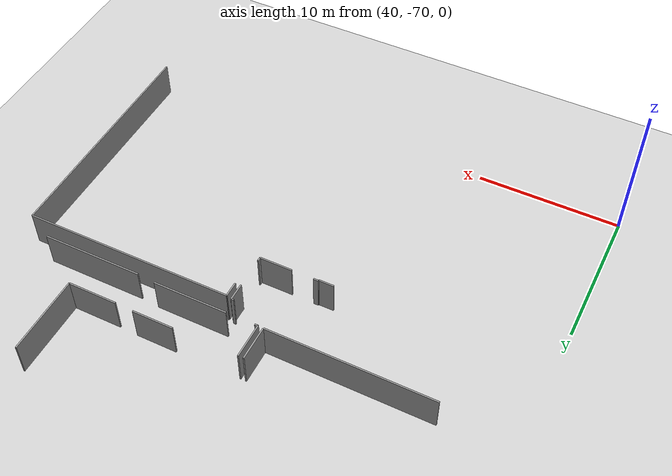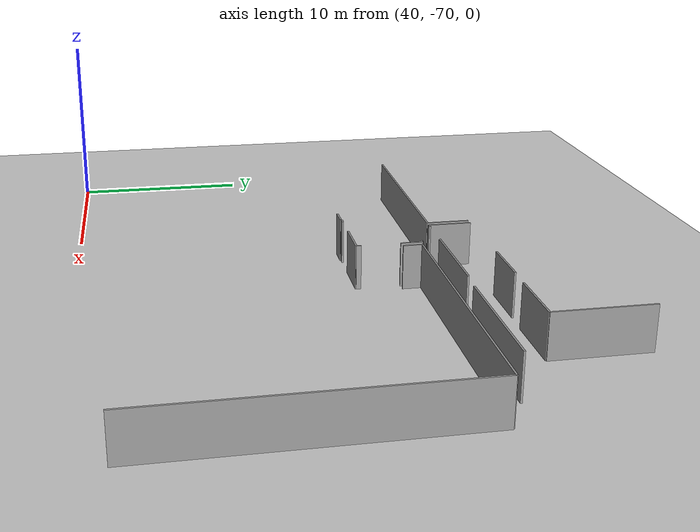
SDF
<sdf version="1.6">
 <world name="default">
  <model name="ground_plane">
   <static>1</static>
   <link name="link">
    <collision name="collision">
     <geometry><plane><normal>0 0 1</normal><size>100 100</size></plane></geometry>
     <surface><friction><ode><mu>100</mu><mu2>50</mu2></ode></friction></surface>
    </collision>
    <visual name="visual">
     <cast_shadows>0</cast_shadows>
     <geometry><plane><normal>0 0 1</normal><size>100 100</size></plane></geometry>
     <material>
      <script><uri>file://media/materials/scripts/gazebo.material</uri><name>Gazebo/Grey</name></script>
     </material>
    </visual>
   </link>
  </model>
  <model name="50036893">
   <static>1</static>
   <link name="Wall_196">
    <collision name="Wall_196_Collision">
     <geometry><box><size>0.18514174122 0.1 2.5</size></box></geometry>
     <pose>0.09257087061 0 1.25 0 0 0</pose>
    </collision>
    <visual name="Wall_196_Visual">
     <pose>0.09257087061 0 1.25 0 0 0</pose>
     <geometry><box><size>0.18514174122 0.1 2.5</size></box></geometry>
     <material>
      <script><uri>file://media/materials/scripts/gazebo.material</uri><name>Gazebo/Grey</name></script>
      <ambient>1 1 1 1</ambient>
     </material>
    </visual>
    <pose>133.325640229 -119.268563313 0 0 0 0.0</pose>
   </link>
   <link name="Wall_197">
    <collision name="Wall_197_Collision">
     <geometry><box><size>1.21407330852 0.1 2.5</size></box></geometry>
     <pose>0.60703665426 0 1.25 0 0 0</pose>
    </collision>
    <visual name="Wall_197_Visual">
     <pose>0.60703665426 0 1.25 0 0 0</pose>
     <geometry><box><size>1.21407330852 0.1 2.5</size></box></geometry>
     <material>
      <script><uri>file://media/materials/scripts/gazebo.material</uri><name>Gazebo/Grey</name></script>
      <ambient>1 1 1 1</ambient>
     </material>
    </visual>
    <pose>133.51078197 -119.268563313 0 0 0 -1.57079632679</pose>
   </link>
   <link name="Wall_198">
    <collision name="Wall_198_Collision">
     <geometry><box><size>0.273908329476 0.1 2.5</size></box></geometry>
     <pose>0.136954164738 0 1.25 0 0 0</pose>
    </collision>
    <visual name="Wall_198_Visual">
     <pose>0.136954164738 0 1.25 0 0 0</pose>
     <geometry><box><size>0.273908329476 0.1 2.5</size></box></geometry>
     <material>
      <script><uri>file://media/materials/scripts/gazebo.material</uri><name>Gazebo/Grey</name></script>
      <ambient>1 1 1 1</ambient>
     </material>
    </visual>
    <pose>133.51078197 -122.641693667 0 0 0 -1.57079632679</pose>
   </link>
   <link name="Wall_199">
    <collision name="Wall_199_Collision">
     <geometry><box><size>2.26735228289 0.1 2.5</size></box></geometry>
     <pose>1.13367614144 0 1.25 0 0 0</pose>
    </collision>
    <visual name="Wall_199_Visual">
     <pose>1.13367614144 0 1.25 0 0 0</pose>
     <geometry><box><size>2.26735228289 0.1 2.5</size></box></geometry>
     <material>
      <script><uri>file://media/materials/scripts/gazebo.material</uri><name>Gazebo/Grey</name></script>
      <ambient>1 1 1 1</ambient>
     </material>
    </visual>
    <pose>133.51078197 -122.915601996 0 0 0 3.14159265359</pose>
   </link>
   <link name="Wall_200">
    <collision name="Wall_200_Collision">
     <geometry><box><size>0.339849223609 0.1 2.5</size></box></geometry>
     <pose>0.169924611805 0 1.25 0 0 0</pose>
    </collision>
    <visual name="Wall_200_Visual">
     <pose>0.169924611805 0 1.25 0 0 0</pose>
     <geometry><box><size>0.339849223609 0.1 2.5</size></box></geometry>
     <material>
      <script><uri>file://media/materials/scripts/gazebo.material</uri><name>Gazebo/Grey</name></script>
      <ambient>1 1 1 1</ambient>
     </material>
    </visual>
    <pose>129.726789122 -122.915601996 0 0 0 3.14159265359</pose>
   </link>
   <link name="Wall_201">
    <collision name="Wall_201_Collision">
     <geometry><box><size>0.054274428248 0.1 2.5</size></box></geometry>
     <pose>0.027137214124 0 1.25 0 0 0</pose>
    </collision>
    <visual name="Wall_201_Visual">
     <pose>0.027137214124 0 1.25 0 0 0</pose>
     <geometry><box><size>0.054274428248 0.1 2.5</size></box></geometry>
     <material>
      <script><uri>file://media/materials/scripts/gazebo.material</uri><name>Gazebo/Grey</name></script>
      <ambient>1 1 1 1</ambient>
     </material>
    </visual>
    <pose>129.386939899 -122.915601996 0 0 0 -1.57079632679</pose>
   </link>
   <link name="Wall_202">
    <collision name="Wall_202_Collision">
     <geometry><box><size>1.05251811789 0.1 2.5</size></box></geometry>
     <pose>0.526259058947 0 1.25 0 0 0</pose>
    </collision>
    <visual name="Wall_202_Visual">
     <pose>0.526259058947 0 1.25 0 0 0</pose>
     <geometry><box><size>1.05251811789 0.1 2.5</size></box></geometry>
     <material>
      <script><uri>file://media/materials/scripts/gazebo.material</uri><name>Gazebo/Grey</name></script>
      <ambient>1 1 1 1</ambient>
     </material>
    </visual>
    <pose>129.386939899 -122.969876424 0 0 0 3.14159265359</pose>
   </link>
   <link name="Wall_261">
    <collision name="Wall_261_Collision">
     <geometry><box><size>1.05860496966 0.1 2.5</size></box></geometry>
     <pose>0.52930248483 0 1.25 0 0 0</pose>
    </collision>
    <visual name="Wall_261_Visual">
     <pose>0.52930248483 0 1.25 0 0 0</pose>
     <geometry><box><size>1.05860496966 0.1 2.5</size></box></geometry>
     <material>
      <script><uri>file://media/materials/scripts/gazebo.material</uri><name>Gazebo/Grey</name></script>
      <ambient>1 1 1 1</ambient>
     </material>
    </visual>
    <pose>133.896282582 -120.433180951 0 0 0 1.57079632679</pose>
   </link>
   <link name="Wall_262">
    <collision name="Wall_262_Collision">
     <geometry><box><size>14.6236613681 0.1 2.5</size></box></geometry>
     <pose>7.31183068407 0 1.25 0 0 0</pose>
    </collision>
    <visual name="Wall_262_Visual">
     <pose>7.31183068407 0 1.25 0 0 0</pose>
     <geometry><box><size>14.6236613681 0.1 2.5</size></box></geometry>
     <material>
      <script><uri>file://media/materials/scripts/gazebo.material</uri><name>Gazebo/Grey</name></script>
      <ambient>1 1 1 1</ambient>
     </material>
    </visual>
    <pose>133.896282582 -119.374575981 0 0 0 0.0</pose>
   </link>
   <link name="Wall_263">
    <collision name="Wall_263_Collision">
     <geometry><box><size>16.3802253403 0.1 2.5</size></box></geometry>
     <pose>8.19011267016 0 1.25 0 0 0</pose>
    </collision>
    <visual name="Wall_263_Visual">
     <pose>8.19011267016 0 1.25 0 0 0</pose>
     <geometry><box><size>16.3802253403 0.1 2.5</size></box></geometry>
     <material>
      <script><uri>file://media/materials/scripts/gazebo.material</uri><name>Gazebo/Grey</name></script>
      <ambient>1 1 1 1</ambient>
     </material>
    </visual>
    <pose>148.51994395 -119.374575981 0 0 0 -1.57079632679</pose>
   </link>
   <link name="Wall_265">
    <collision name="Wall_265_Collision">
     <geometry><box><size>2.43550156293 0.1 2.5</size></box></geometry>
     <pose>1.21775078146 0 1.25 0 0 0</pose>
    </collision>
    <visual name="Wall_265_Visual">
     <pose>1.21775078146 0 1.25 0 0 0</pose>
     <geometry><box><size>2.43550156293 0.1 2.5</size></box></geometry>
     <material>
      <script><uri>file://media/materials/scripts/gazebo.material</uri><name>Gazebo/Grey</name></script>
      <ambient>1 1 1 1</ambient>
     </material>
    </visual>
    <pose>131.065896511 -118.252312687 0 0 0 1.57079632679</pose>
   </link>
   <link name="Wall_275">
    <collision name="Wall_275_Collision">
     <geometry><box><size>2.85574795361 0.1 2.5</size></box></geometry>
     <pose>1.42787397681 0 1.25 0 0 0</pose>
    </collision>
    <visual name="Wall_275_Visual">
     <pose>1.42787397681 0 1.25 0 0 0</pose>
     <geometry><box><size>2.85574795361 0.1 2.5</size></box></geometry>
     <material>
      <script><uri>file://media/materials/scripts/gazebo.material</uri><name>Gazebo/Grey</name></script>
      <ambient>1 1 1 1</ambient>
     </material>
    </visual>
    <pose>135.5524135 -115.794999905 0 0 0 0.0</pose>
   </link>
   <link name="Wall_276">
    <collision name="Wall_276_Collision">
     <geometry><box><size>5.13324498944 0.1 2.5</size></box></geometry>
     <pose>2.56662249472 0 1.25 0 0 0</pose>
    </collision>
    <visual name="Wall_276_Visual">
     <pose>2.56662249472 0 1.25 0 0 0</pose>
     <geometry><box><size>5.13324498944 0.1 2.5</size></box></geometry>
     <material>
      <script><uri>file://media/materials/scripts/gazebo.material</uri><name>Gazebo/Grey</name></script>
      <ambient>1 1 1 1</ambient>
     </material>
    </visual>
    <pose>138.408161454 -118.235320225 0 0 0 3.14159265359</pose>
   </link>
   <link name="Wall_277">
    <collision name="Wall_277_Collision">
     <geometry><box><size>0.223830502129 0.1 2.5</size></box></geometry>
     <pose>0.111915251065 0 1.25 0 0 0</pose>
    </collision>
    <visual name="Wall_277_Visual">
     <pose>0.111915251065 0 1.25 0 0 0</pose>
     <geometry><box><size>0.223830502129 0.1 2.5</size></box></geometry>
     <material>
      <script><uri>file://media/materials/scripts/gazebo.material</uri><name>Gazebo/Grey</name></script>
      <ambient>1 1 1 1</ambient>
     </material>
    </visual>
    <pose>131.289081076 -118.235320225 0 0 0 -3.06560289478</pose>
   </link>
   <link name="Wall_280">
    <collision name="Wall_280_Collision">
     <geometry><box><size>6.9390110134 0.1 2.5</size></box></geometry>
     <pose>3.4695055067 0 1.25 0 0 0</pose>
    </collision>
    <visual name="Wall_280_Visual">
     <pose>3.4695055067 0 1.25 0 0 0</pose>
     <geometry><box><size>6.9390110134 0.1 2.5</size></box></geometry>
     <material>
      <script><uri>file://media/materials/scripts/gazebo.material</uri><name>Gazebo/Grey</name></script>
      <ambient>1 1 1 1</ambient>
     </material>
    </visual>
    <pose>146.612730397 -118.343361844 0 0 0 3.14159265359</pose>
   </link>
   <link name="Wall_281">
    <collision name="Wall_281_Collision">
     <geometry><box><size>3.41878174198 0.1 2.5</size></box></geometry>
     <pose>1.70939087099 0 1.25 0 0 0</pose>
    </collision>
    <visual name="Wall_281_Visual">
     <pose>1.70939087099 0 1.25 0 0 0</pose>
     <geometry><box><size>3.41878174198 0.1 2.5</size></box></geometry>
     <material>
      <script><uri>file://media/materials/scripts/gazebo.material</uri><name>Gazebo/Grey</name></script>
      <ambient>1 1 1 1</ambient>
     </material>
    </visual>
    <pose>139.673719383 -115.839636818 0 0 0 0.0</pose>
   </link>
   <link name="Wall_282">
    <collision name="Wall_282_Collision">
     <geometry><box><size>5.39066809539 0.1 2.5</size></box></geometry>
     <pose>2.69533404769 0 1.25 0 0 0</pose>
    </collision>
    <visual name="Wall_282_Visual">
     <pose>2.69533404769 0 1.25 0 0 0</pose>
     <geometry><box><size>5.39066809539 0.1 2.5</size></box></geometry>
     <material>
      <script><uri>file://media/materials/scripts/gazebo.material</uri><name>Gazebo/Grey</name></script>
      <ambient>1 1 1 1</ambient>
     </material>
    </visual>
    <pose>143.092501125 -115.839636818 0 0 0 1.57079632679</pose>
   </link>
   <link name="Wall_302">
    <collision name="Wall_302_Collision">
     <geometry><box><size>2.39314721939 0.1 2.5</size></box></geometry>
     <pose>1.19657360969 0 1.25 0 0 0</pose>
    </collision>
    <visual name="Wall_302_Visual">
     <pose>1.19657360969 0 1.25 0 0 0</pose>
     <geometry><box><size>2.39314721939 0.1 2.5</size></box></geometry>
     <material>
      <script><uri>file://media/materials/scripts/gazebo.material</uri><name>Gazebo/Grey</name></script>
      <ambient>1 1 1 1</ambient>
     </material>
    </visual>
    <pose>130.69307684 -115.830252921 0 0 0 -1.57079632679</pose>
   </link>
   <link name="Wall_303">
    <collision name="Wall_303_Collision">
     <geometry><box><size>11.4559820704 0.1 2.5</size></box></geometry>
     <pose>5.72799103519 0 1.25 0 0 0</pose>
    </collision>
    <visual name="Wall_303_Visual">
     <pose>5.72799103519 0 1.25 0 0 0</pose>
     <geometry><box><size>11.4559820704 0.1 2.5</size></box></geometry>
     <material>
      <script><uri>file://media/materials/scripts/gazebo.material</uri><name>Gazebo/Grey</name></script>
      <ambient>1 1 1 1</ambient>
     </material>
    </visual>
    <pose>130.69307684 -118.223400141 0 0 0 3.13973301438</pose>
   </link>
   <pose>-74.25 67.8925905261 0 0 0 0</pose>
  </model>
 </world>
</sdf>
